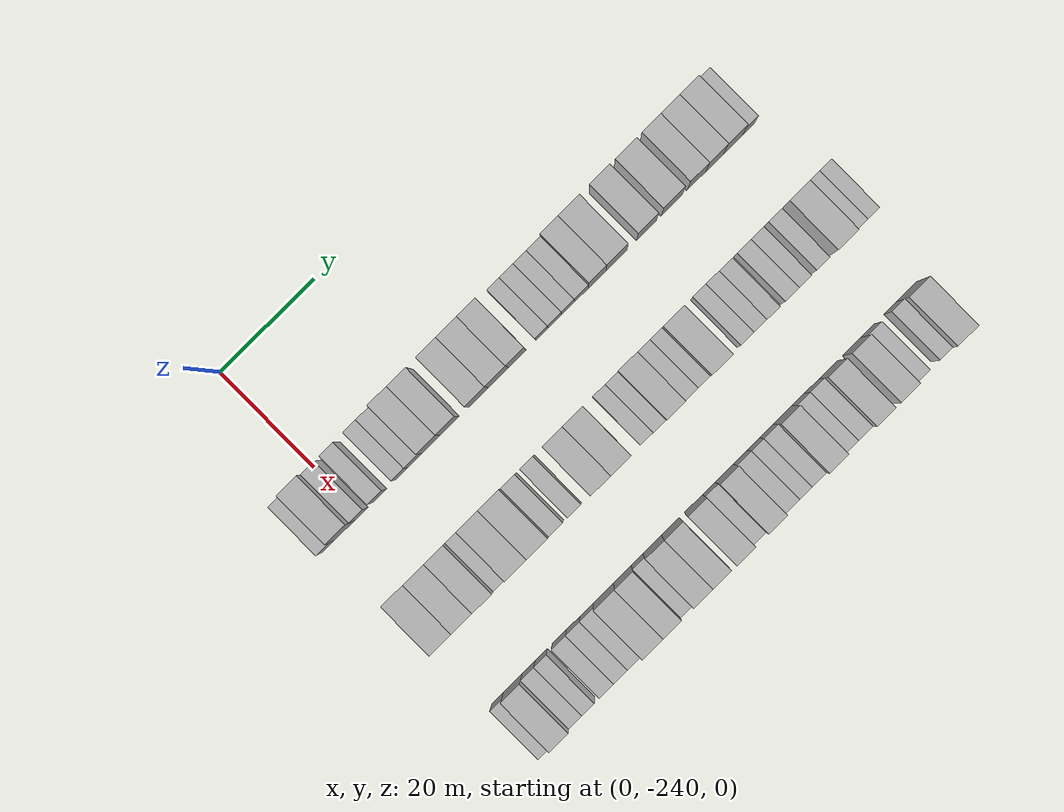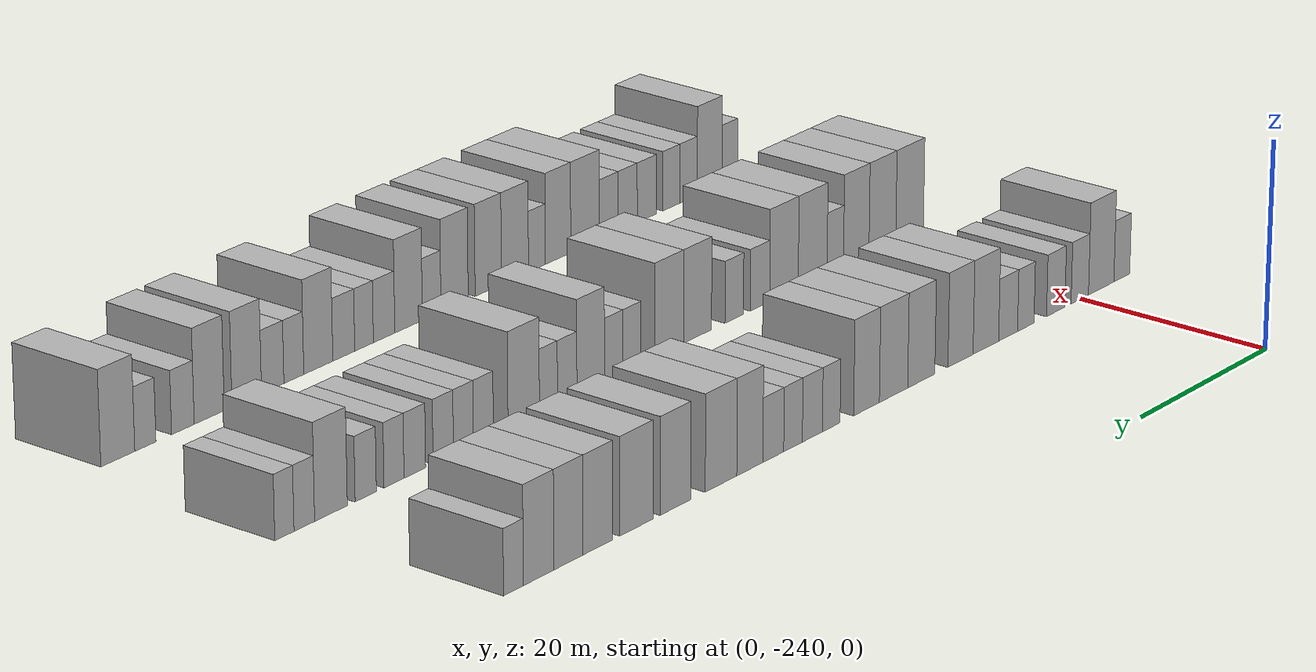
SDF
<sdf version="1.6">
 <world name="default">
  <model name="building_1">
   <static>1</static>
   <pose>25.0000 -246.6970 0 0.000000 0.000000 0.000000</pose>
   <link name="link">
    <pose>0 0 3.00 0 0 0</pose>
    <collision name="collision"><geometry><box><size>10.0000 2.6060 6.0000</size></box></geometry></collision>
    <visual name="visual">
     <cast_shadows>0</cast_shadows>
     <geometry><box><size>10.0000 2.6060 6.0000</size></box></geometry>
     <material>
      <script>
       <uri>model://HANNAS_wall/materials/scripts</uri>
       <uri>model://HANNAS_wall/materials/textures</uri>
       <name>vrc/HANNAS_wall</name>
      </script>
     </material>
    </visual>
   </link>
  </model>
  <model name="building_2">
   <static>1</static>
   <pose>25.0000 -243.3223 0 0.000000 0.000000 0.000000</pose>
   <link name="link">
    <pose>0 0 4.50 0 0 0</pose>
    <collision name="collision"><geometry><box><size>10.0000 4.1435 9.0000</size></box></geometry></collision>
    <visual name="visual">
     <cast_shadows>0</cast_shadows>
     <geometry><box><size>10.0000 4.1435 9.0000</size></box></geometry>
     <material>
      <script>
       <uri>model://HANNAS_wall/materials/scripts</uri>
       <uri>model://HANNAS_wall/materials/textures</uri>
       <name>vrc/HANNAS_wall</name>
      </script>
     </material>
    </visual>
   </link>
  </model>
  <model name="building_3">
   <static>1</static>
   <pose>25.0000 -239.8434 0 0.000000 0.000000 0.000000</pose>
   <link name="link">
    <pose>0 0 3.00 0 0 0</pose>
    <collision name="collision"><geometry><box><size>10.0000 2.8142 6.0000</size></box></geometry></collision>
    <visual name="visual">
     <cast_shadows>0</cast_shadows>
     <geometry><box><size>10.0000 2.8142 6.0000</size></box></geometry>
     <material>
      <script>
       <uri>model://HANNAS_wall/materials/scripts</uri>
       <uri>model://HANNAS_wall/materials/textures</uri>
       <name>vrc/HANNAS_wall</name>
      </script>
     </material>
    </visual>
   </link>
  </model>
  <model name="building_4">
   <static>1</static>
   <pose>25.0000 -235.9697 0 0.000000 0.000000 0.000000</pose>
   <link name="link">
    <pose>0 0 3.00 0 0 0</pose>
    <collision name="collision"><geometry><box><size>10.0000 2.9332 6.0000</size></box></geometry></collision>
    <visual name="visual">
     <cast_shadows>0</cast_shadows>
     <geometry><box><size>10.0000 2.9332 6.0000</size></box></geometry>
     <material>
      <script>
       <uri>model://HANNAS_wall/materials/scripts</uri>
       <uri>model://HANNAS_wall/materials/textures</uri>
       <name>vrc/HANNAS_wall</name>
      </script>
     </material>
    </visual>
   </link>
  </model>
  <model name="building_5">
   <static>1</static>
   <pose>25.0000 -231.2033 0 0.000000 0.000000 0.000000</pose>
   <link name="link">
    <pose>0 0 3.00 0 0 0</pose>
    <collision name="collision"><geometry><box><size>10.0000 2.5995 6.0000</size></box></geometry></collision>
    <visual name="visual">
     <cast_shadows>0</cast_shadows>
     <geometry><box><size>10.0000 2.5995 6.0000</size></box></geometry>
     <material>
      <script>
       <uri>model://HANNAS_wall/materials/scripts</uri>
       <uri>model://HANNAS_wall/materials/textures</uri>
       <name>vrc/HANNAS_wall</name>
      </script>
     </material>
    </visual>
   </link>
  </model>
  <model name="building_6">
   <static>1</static>
   <pose>25.0000 -228.4202 0 0.000000 0.000000 0.000000</pose>
   <link name="link">
    <pose>0 0 3.00 0 0 0</pose>
    <collision name="collision"><geometry><box><size>10.0000 2.9668 6.0000</size></box></geometry></collision>
    <visual name="visual">
     <cast_shadows>0</cast_shadows>
     <geometry><box><size>10.0000 2.9668 6.0000</size></box></geometry>
     <material>
      <script>
       <uri>model://HANNAS_wall/materials/scripts</uri>
       <uri>model://HANNAS_wall/materials/textures</uri>
       <name>vrc/HANNAS_wall</name>
      </script>
     </material>
    </visual>
   </link>
  </model>
  <model name="building_7">
   <static>1</static>
   <pose>25.0000 -224.9501 0 0.000000 0.000000 0.000000</pose>
   <link name="link">
    <pose>0 0 4.50 0 0 0</pose>
    <collision name="collision"><geometry><box><size>10.0000 3.9732 9.0000</size></box></geometry></collision>
    <visual name="visual">
     <cast_shadows>0</cast_shadows>
     <geometry><box><size>10.0000 3.9732 9.0000</size></box></geometry>
     <material>
      <script>
       <uri>model://HANNAS_wall/materials/scripts</uri>
       <uri>model://HANNAS_wall/materials/textures</uri>
       <name>vrc/HANNAS_wall</name>
      </script>
     </material>
    </visual>
   </link>
  </model>
  <model name="building_8">
   <static>1</static>
   <pose>25.0000 -221.0262 0 0.000000 0.000000 0.000000</pose>
   <link name="link">
    <pose>0 0 4.50 0 0 0</pose>
    <collision name="collision"><geometry><box><size>10.0000 3.8746 9.0000</size></box></geometry></collision>
    <visual name="visual">
     <cast_shadows>0</cast_shadows>
     <geometry><box><size>10.0000 3.8746 9.0000</size></box></geometry>
     <material>
      <script>
       <uri>model://HANNAS_wall/materials/scripts</uri>
       <uri>model://HANNAS_wall/materials/textures</uri>
       <name>vrc/HANNAS_wall</name>
      </script>
     </material>
    </visual>
   </link>
  </model>
  <model name="building_9">
   <static>1</static>
   <pose>25.0000 -215.0378 0 0.000000 0.000000 0.000000</pose>
   <link name="link">
    <pose>0 0 4.50 0 0 0</pose>
    <collision name="collision"><geometry><box><size>10.0000 4.1022 9.0000</size></box></geometry></collision>
    <visual name="visual">
     <cast_shadows>0</cast_shadows>
     <geometry><box><size>10.0000 4.1022 9.0000</size></box></geometry>
     <material>
      <script>
       <uri>model://HANNAS_wall/materials/scripts</uri>
       <uri>model://HANNAS_wall/materials/textures</uri>
       <name>vrc/HANNAS_wall</name>
      </script>
     </material>
    </visual>
   </link>
  </model>
  <model name="building_10">
   <static>1</static>
   <pose>25.0000 -210.8659 0 0.000000 0.000000 0.000000</pose>
   <link name="link">
    <pose>0 0 4.50 0 0 0</pose>
    <collision name="collision"><geometry><box><size>10.0000 4.2416 9.0000</size></box></geometry></collision>
    <visual name="visual">
     <cast_shadows>0</cast_shadows>
     <geometry><box><size>10.0000 4.2416 9.0000</size></box></geometry>
     <material>
      <script>
       <uri>model://HANNAS_wall/materials/scripts</uri>
       <uri>model://HANNAS_wall/materials/textures</uri>
       <name>vrc/HANNAS_wall</name>
      </script>
     </material>
    </visual>
   </link>
  </model>
  <model name="building_11">
   <static>1</static>
   <pose>25.0000 -206.8452 0 0.000000 0.000000 0.000000</pose>
   <link name="link">
    <pose>0 0 4.50 0 0 0</pose>
    <collision name="collision"><geometry><box><size>10.0000 3.7999 9.0000</size></box></geometry></collision>
    <visual name="visual">
     <cast_shadows>0</cast_shadows>
     <geometry><box><size>10.0000 3.7999 9.0000</size></box></geometry>
     <material>
      <script>
       <uri>model://HANNAS_wall/materials/scripts</uri>
       <uri>model://HANNAS_wall/materials/textures</uri>
       <name>vrc/HANNAS_wall</name>
      </script>
     </material>
    </visual>
   </link>
  </model>
  <model name="building_12">
   <static>1</static>
   <pose>25.0000 -201.6566 0 0.000000 0.000000 0.000000</pose>
   <link name="link">
    <pose>0 0 3.00 0 0 0</pose>
    <collision name="collision"><geometry><box><size>10.0000 2.5771 6.0000</size></box></geometry></collision>
    <visual name="visual">
     <cast_shadows>0</cast_shadows>
     <geometry><box><size>10.0000 2.5771 6.0000</size></box></geometry>
     <material>
      <script>
       <uri>model://HANNAS_wall/materials/scripts</uri>
       <uri>model://HANNAS_wall/materials/textures</uri>
       <name>vrc/HANNAS_wall</name>
      </script>
     </material>
    </visual>
   </link>
  </model>
  <model name="building_13">
   <static>1</static>
   <pose>25.0000 -198.9184 0 0.000000 0.000000 0.000000</pose>
   <link name="link">
    <pose>0 0 3.00 0 0 0</pose>
    <collision name="collision"><geometry><box><size>10.0000 2.8992 6.0000</size></box></geometry></collision>
    <visual name="visual">
     <cast_shadows>0</cast_shadows>
     <geometry><box><size>10.0000 2.8992 6.0000</size></box></geometry>
     <material>
      <script>
       <uri>model://HANNAS_wall/materials/scripts</uri>
       <uri>model://HANNAS_wall/materials/textures</uri>
       <name>vrc/HANNAS_wall</name>
      </script>
     </material>
    </visual>
   </link>
  </model>
  <model name="building_14">
   <static>1</static>
   <pose>25.0000 -196.1266 0 0.000000 0.000000 0.000000</pose>
   <link name="link">
    <pose>0 0 3.00 0 0 0</pose>
    <collision name="collision"><geometry><box><size>10.0000 2.6846 6.0000</size></box></geometry></collision>
    <visual name="visual">
     <cast_shadows>0</cast_shadows>
     <geometry><box><size>10.0000 2.6846 6.0000</size></box></geometry>
     <material>
      <script>
       <uri>model://HANNAS_wall/materials/scripts</uri>
       <uri>model://HANNAS_wall/materials/textures</uri>
       <name>vrc/HANNAS_wall</name>
      </script>
     </material>
    </visual>
   </link>
  </model>
  <model name="building_15">
   <static>1</static>
   <pose>25.0000 -193.3024 0 0.000000 0.000000 0.000000</pose>
   <link name="link">
    <pose>0 0 3.00 0 0 0</pose>
    <collision name="collision"><geometry><box><size>10.0000 2.9638 6.0000</size></box></geometry></collision>
    <visual name="visual">
     <cast_shadows>0</cast_shadows>
     <geometry><box><size>10.0000 2.9638 6.0000</size></box></geometry>
     <material>
      <script>
       <uri>model://HANNAS_wall/materials/scripts</uri>
       <uri>model://HANNAS_wall/materials/textures</uri>
       <name>vrc/HANNAS_wall</name>
      </script>
     </material>
    </visual>
   </link>
  </model>
  <model name="building_16">
   <static>1</static>
   <pose>25.0000 -189.9717 0 0.000000 0.000000 0.000000</pose>
   <link name="link">
    <pose>0 0 4.50 0 0 0</pose>
    <collision name="collision"><geometry><box><size>10.0000 3.6975 9.0000</size></box></geometry></collision>
    <visual name="visual">
     <cast_shadows>0</cast_shadows>
     <geometry><box><size>10.0000 3.6975 9.0000</size></box></geometry>
     <material>
      <script>
       <uri>model://HANNAS_wall/materials/scripts</uri>
       <uri>model://HANNAS_wall/materials/textures</uri>
       <name>vrc/HANNAS_wall</name>
      </script>
     </material>
    </visual>
   </link>
  </model>
  <model name="building_17">
   <static>1</static>
   <pose>25.0000 -185.9258 0 0.000000 0.000000 0.000000</pose>
   <link name="link">
    <pose>0 0 4.50 0 0 0</pose>
    <collision name="collision"><geometry><box><size>10.0000 4.3942 9.0000</size></box></geometry></collision>
    <visual name="visual">
     <cast_shadows>0</cast_shadows>
     <geometry><box><size>10.0000 4.3942 9.0000</size></box></geometry>
     <material>
      <script>
       <uri>model://HANNAS_wall/materials/scripts</uri>
       <uri>model://HANNAS_wall/materials/textures</uri>
       <name>vrc/HANNAS_wall</name>
      </script>
     </material>
    </visual>
   </link>
  </model>
  <model name="building_18">
   <static>1</static>
   <pose>25.0000 -179.6303 0 0.000000 0.000000 0.000000</pose>
   <link name="link">
    <pose>0 0 4.50 0 0 0</pose>
    <collision name="collision"><geometry><box><size>10.0000 4.1968 9.0000</size></box></geometry></collision>
    <visual name="visual">
     <cast_shadows>0</cast_shadows>
     <geometry><box><size>10.0000 4.1968 9.0000</size></box></geometry>
     <material>
      <script>
       <uri>model://HANNAS_wall/materials/scripts</uri>
       <uri>model://HANNAS_wall/materials/textures</uri>
       <name>vrc/HANNAS_wall</name>
      </script>
     </material>
    </visual>
   </link>
  </model>
  <model name="building_19">
   <static>1</static>
   <pose>25.0000 -174.3043 0 0.000000 0.000000 0.000000</pose>
   <link name="link">
    <pose>0 0 4.50 0 0 0</pose>
    <collision name="collision"><geometry><box><size>10.0000 4.4552 9.0000</size></box></geometry></collision>
    <visual name="visual">
     <cast_shadows>0</cast_shadows>
     <geometry><box><size>10.0000 4.4552 9.0000</size></box></geometry>
     <material>
      <script>
       <uri>model://HANNAS_wall/materials/scripts</uri>
       <uri>model://HANNAS_wall/materials/textures</uri>
       <name>vrc/HANNAS_wall</name>
      </script>
     </material>
    </visual>
   </link>
  </model>
  <model name="building_20">
   <static>1</static>
   <pose>25.0000 -169.1178 0 0.000000 0.000000 0.000000</pose>
   <link name="link">
    <pose>0 0 4.50 0 0 0</pose>
    <collision name="collision"><geometry><box><size>10.0000 3.9179 9.0000</size></box></geometry></collision>
    <visual name="visual">
     <cast_shadows>0</cast_shadows>
     <geometry><box><size>10.0000 3.9179 9.0000</size></box></geometry>
     <material>
      <script>
       <uri>model://HANNAS_wall/materials/scripts</uri>
       <uri>model://HANNAS_wall/materials/textures</uri>
       <name>vrc/HANNAS_wall</name>
      </script>
     </material>
    </visual>
   </link>
  </model>
  <model name="building_21">
   <static>1</static>
   <pose>25.0000 -165.2449 0 0.000000 0.000000 0.000000</pose>
   <link name="link">
    <pose>0 0 4.50 0 0 0</pose>
    <collision name="collision"><geometry><box><size>10.0000 3.8280 9.0000</size></box></geometry></collision>
    <visual name="visual">
     <cast_shadows>0</cast_shadows>
     <geometry><box><size>10.0000 3.8280 9.0000</size></box></geometry>
     <material>
      <script>
       <uri>model://HANNAS_wall/materials/scripts</uri>
       <uri>model://HANNAS_wall/materials/textures</uri>
       <name>vrc/HANNAS_wall</name>
      </script>
     </material>
    </visual>
   </link>
  </model>
  <model name="building_22">
   <static>1</static>
   <pose>25.0000 -161.3440 0 0.000000 0.000000 0.000000</pose>
   <link name="link">
    <pose>0 0 4.50 0 0 0</pose>
    <collision name="collision"><geometry><box><size>10.0000 3.9738 9.0000</size></box></geometry></collision>
    <visual name="visual">
     <cast_shadows>0</cast_shadows>
     <geometry><box><size>10.0000 3.9738 9.0000</size></box></geometry>
     <material>
      <script>
       <uri>model://HANNAS_wall/materials/scripts</uri>
       <uri>model://HANNAS_wall/materials/textures</uri>
       <name>vrc/HANNAS_wall</name>
      </script>
     </material>
    </visual>
   </link>
  </model>
  <model name="building_23">
   <static>1</static>
   <pose>25.0000 -158.0768 0 0.000000 0.000000 0.000000</pose>
   <link name="link">
    <pose>0 0 3.00 0 0 0</pose>
    <collision name="collision"><geometry><box><size>10.0000 2.5608 6.0000</size></box></geometry></collision>
    <visual name="visual">
     <cast_shadows>0</cast_shadows>
     <geometry><box><size>10.0000 2.5608 6.0000</size></box></geometry>
     <material>
      <script>
       <uri>model://HANNAS_wall/materials/scripts</uri>
       <uri>model://HANNAS_wall/materials/textures</uri>
       <name>vrc/HANNAS_wall</name>
      </script>
     </material>
    </visual>
   </link>
  </model>
  <model name="building_124">
   <static>1</static>
   <pose>47.0000 -243.7824 0 0.000000 0.000000 0.000000</pose>
   <link name="link">
    <pose>0 0 4.50 0 0 0</pose>
    <collision name="collision"><geometry><box><size>10.0000 4.4352 9.0000</size></box></geometry></collision>
    <visual name="visual">
     <cast_shadows>0</cast_shadows>
     <geometry><box><size>10.0000 4.4352 9.0000</size></box></geometry>
     <material>
      <script>
       <uri>model://HANNAS_wall/materials/scripts</uri>
       <uri>model://HANNAS_wall/materials/textures</uri>
       <name>vrc/HANNAS_wall</name>
      </script>
     </material>
    </visual>
   </link>
  </model>
  <model name="building_125">
   <static>1</static>
   <pose>47.0000 -239.4387 0 0.000000 0.000000 0.000000</pose>
   <link name="link">
    <pose>0 0 4.50 0 0 0</pose>
    <collision name="collision"><geometry><box><size>10.0000 4.2520 9.0000</size></box></geometry></collision>
    <visual name="visual">
     <cast_shadows>0</cast_shadows>
     <geometry><box><size>10.0000 4.2520 9.0000</size></box></geometry>
     <material>
      <script>
       <uri>model://HANNAS_wall/materials/scripts</uri>
       <uri>model://HANNAS_wall/materials/textures</uri>
       <name>vrc/HANNAS_wall</name>
      </script>
     </material>
    </visual>
   </link>
  </model>
  <model name="building_126">
   <static>1</static>
   <pose>47.0000 -235.3154 0 0.000000 0.000000 0.000000</pose>
   <link name="link">
    <pose>0 0 4.50 0 0 0</pose>
    <collision name="collision"><geometry><box><size>10.0000 3.9947 9.0000</size></box></geometry></collision>
    <visual name="visual">
     <cast_shadows>0</cast_shadows>
     <geometry><box><size>10.0000 3.9947 9.0000</size></box></geometry>
     <material>
      <script>
       <uri>model://HANNAS_wall/materials/scripts</uri>
       <uri>model://HANNAS_wall/materials/textures</uri>
       <name>vrc/HANNAS_wall</name>
      </script>
     </material>
    </visual>
   </link>
  </model>
  <model name="building_127">
   <static>1</static>
   <pose>47.0000 -232.0359 0 0.000000 0.000000 0.000000</pose>
   <link name="link">
    <pose>0 0 3.00 0 0 0</pose>
    <collision name="collision"><geometry><box><size>10.0000 2.5642 6.0000</size></box></geometry></collision>
    <visual name="visual">
     <cast_shadows>0</cast_shadows>
     <geometry><box><size>10.0000 2.5642 6.0000</size></box></geometry>
     <material>
      <script>
       <uri>model://HANNAS_wall/materials/scripts</uri>
       <uri>model://HANNAS_wall/materials/textures</uri>
       <name>vrc/HANNAS_wall</name>
      </script>
     </material>
    </visual>
   </link>
  </model>
  <model name="building_128">
   <static>1</static>
   <pose>47.0000 -228.5365 0 0.000000 0.000000 0.000000</pose>
   <link name="link">
    <pose>0 0 4.50 0 0 0</pose>
    <collision name="collision"><geometry><box><size>10.0000 4.4346 9.0000</size></box></geometry></collision>
    <visual name="visual">
     <cast_shadows>0</cast_shadows>
     <geometry><box><size>10.0000 4.4346 9.0000</size></box></geometry>
     <material>
      <script>
       <uri>model://HANNAS_wall/materials/scripts</uri>
       <uri>model://HANNAS_wall/materials/textures</uri>
       <name>vrc/HANNAS_wall</name>
      </script>
     </material>
    </visual>
   </link>
  </model>
  <model name="building_129">
   <static>1</static>
   <pose>47.0000 -224.1446 0 0.000000 0.000000 0.000000</pose>
   <link name="link">
    <pose>0 0 4.50 0 0 0</pose>
    <collision name="collision"><geometry><box><size>10.0000 4.3493 9.0000</size></box></geometry></collision>
    <visual name="visual">
     <cast_shadows>0</cast_shadows>
     <geometry><box><size>10.0000 4.3493 9.0000</size></box></geometry>
     <material>
      <script>
       <uri>model://HANNAS_wall/materials/scripts</uri>
       <uri>model://HANNAS_wall/materials/textures</uri>
       <name>vrc/HANNAS_wall</name>
      </script>
     </material>
    </visual>
   </link>
  </model>
  <model name="building_130">
   <static>1</static>
   <pose>47.0000 -220.4897 0 0.000000 0.000000 0.000000</pose>
   <link name="link">
    <pose>0 0 3.00 0 0 0</pose>
    <collision name="collision"><geometry><box><size>10.0000 2.9606 6.0000</size></box></geometry></collision>
    <visual name="visual">
     <cast_shadows>0</cast_shadows>
     <geometry><box><size>10.0000 2.9606 6.0000</size></box></geometry>
     <material>
      <script>
       <uri>model://HANNAS_wall/materials/scripts</uri>
       <uri>model://HANNAS_wall/materials/textures</uri>
       <name>vrc/HANNAS_wall</name>
      </script>
     </material>
    </visual>
   </link>
  </model>
  <model name="building_131">
   <static>1</static>
   <pose>47.0000 -216.6274 0 0.000000 0.000000 0.000000</pose>
   <link name="link">
    <pose>0 0 3.00 0 0 0</pose>
    <collision name="collision"><geometry><box><size>10.0000 2.7639 6.0000</size></box></geometry></collision>
    <visual name="visual">
     <cast_shadows>0</cast_shadows>
     <geometry><box><size>10.0000 2.7639 6.0000</size></box></geometry>
     <material>
      <script>
       <uri>model://HANNAS_wall/materials/scripts</uri>
       <uri>model://HANNAS_wall/materials/textures</uri>
       <name>vrc/HANNAS_wall</name>
      </script>
     </material>
    </visual>
   </link>
  </model>
  <model name="building_132">
   <static>1</static>
   <pose>47.0000 -211.1855 0 0.000000 0.000000 0.000000</pose>
   <link name="link">
    <pose>0 0 4.50 0 0 0</pose>
    <collision name="collision"><geometry><box><size>10.0000 4.1198 9.0000</size></box></geometry></collision>
    <visual name="visual">
     <cast_shadows>0</cast_shadows>
     <geometry><box><size>10.0000 4.1198 9.0000</size></box></geometry>
     <material>
      <script>
       <uri>model://HANNAS_wall/materials/scripts</uri>
       <uri>model://HANNAS_wall/materials/textures</uri>
       <name>vrc/HANNAS_wall</name>
      </script>
     </material>
    </visual>
   </link>
  </model>
  <model name="building_133">
   <static>1</static>
   <pose>47.0000 -207.0410 0 0.000000 0.000000 0.000000</pose>
   <link name="link">
    <pose>0 0 4.50 0 0 0</pose>
    <collision name="collision"><geometry><box><size>10.0000 4.1692 9.0000</size></box></geometry></collision>
    <visual name="visual">
     <cast_shadows>0</cast_shadows>
     <geometry><box><size>10.0000 4.1692 9.0000</size></box></geometry>
     <material>
      <script>
       <uri>model://HANNAS_wall/materials/scripts</uri>
       <uri>model://HANNAS_wall/materials/textures</uri>
       <name>vrc/HANNAS_wall</name>
      </script>
     </material>
    </visual>
   </link>
  </model>
  <model name="building_134">
   <static>1</static>
   <pose>47.0000 -201.6583 0 0.000000 0.000000 0.000000</pose>
   <link name="link">
    <pose>0 0 3.00 0 0 0</pose>
    <collision name="collision"><geometry><box><size>10.0000 2.5963 6.0000</size></box></geometry></collision>
    <visual name="visual">
     <cast_shadows>0</cast_shadows>
     <geometry><box><size>10.0000 2.5963 6.0000</size></box></geometry>
     <material>
      <script>
       <uri>model://HANNAS_wall/materials/scripts</uri>
       <uri>model://HANNAS_wall/materials/textures</uri>
       <name>vrc/HANNAS_wall</name>
      </script>
     </material>
    </visual>
   </link>
  </model>
  <model name="building_135">
   <static>1</static>
   <pose>47.0000 -199.0377 0 0.000000 0.000000 0.000000</pose>
   <link name="link">
    <pose>0 0 3.00 0 0 0</pose>
    <collision name="collision"><geometry><box><size>10.0000 2.6450 6.0000</size></box></geometry></collision>
    <visual name="visual">
     <cast_shadows>0</cast_shadows>
     <geometry><box><size>10.0000 2.6450 6.0000</size></box></geometry>
     <material>
      <script>
       <uri>model://HANNAS_wall/materials/scripts</uri>
       <uri>model://HANNAS_wall/materials/textures</uri>
       <name>vrc/HANNAS_wall</name>
      </script>
     </material>
    </visual>
   </link>
  </model>
  <model name="building_136">
   <static>1</static>
   <pose>47.0000 -195.7688 0 0.000000 0.000000 0.000000</pose>
   <link name="link">
    <pose>0 0 4.50 0 0 0</pose>
    <collision name="collision"><geometry><box><size>10.0000 3.8927 9.0000</size></box></geometry></collision>
    <visual name="visual">
     <cast_shadows>0</cast_shadows>
     <geometry><box><size>10.0000 3.8927 9.0000</size></box></geometry>
     <material>
      <script>
       <uri>model://HANNAS_wall/materials/scripts</uri>
       <uri>model://HANNAS_wall/materials/textures</uri>
       <name>vrc/HANNAS_wall</name>
      </script>
     </material>
    </visual>
   </link>
  </model>
  <model name="building_137">
   <static>1</static>
   <pose>47.0000 -192.4594 0 0.000000 0.000000 0.000000</pose>
   <link name="link">
    <pose>0 0 3.00 0 0 0</pose>
    <collision name="collision"><geometry><box><size>10.0000 2.7261 6.0000</size></box></geometry></collision>
    <visual name="visual">
     <cast_shadows>0</cast_shadows>
     <geometry><box><size>10.0000 2.7261 6.0000</size></box></geometry>
     <material>
      <script>
       <uri>model://HANNAS_wall/materials/scripts</uri>
       <uri>model://HANNAS_wall/materials/textures</uri>
       <name>vrc/HANNAS_wall</name>
      </script>
     </material>
    </visual>
   </link>
  </model>
  <model name="building_138">
   <static>1</static>
   <pose>47.0000 -189.8411 0 0.000000 0.000000 0.000000</pose>
   <link name="link">
    <pose>0 0 3.00 0 0 0</pose>
    <collision name="collision"><geometry><box><size>10.0000 2.5106 6.0000</size></box></geometry></collision>
    <visual name="visual">
     <cast_shadows>0</cast_shadows>
     <geometry><box><size>10.0000 2.5106 6.0000</size></box></geometry>
     <material>
      <script>
       <uri>model://HANNAS_wall/materials/scripts</uri>
       <uri>model://HANNAS_wall/materials/textures</uri>
       <name>vrc/HANNAS_wall</name>
      </script>
     </material>
    </visual>
   </link>
  </model>
  <model name="building_139">
   <static>1</static>
   <pose>47.0000 -186.4212 0 0.000000 0.000000 0.000000</pose>
   <link name="link">
    <pose>0 0 4.50 0 0 0</pose>
    <collision name="collision"><geometry><box><size>10.0000 4.3291 9.0000</size></box></geometry></collision>
    <visual name="visual">
     <cast_shadows>0</cast_shadows>
     <geometry><box><size>10.0000 4.3291 9.0000</size></box></geometry>
     <material>
      <script>
       <uri>model://HANNAS_wall/materials/scripts</uri>
       <uri>model://HANNAS_wall/materials/textures</uri>
       <name>vrc/HANNAS_wall</name>
      </script>
     </material>
    </visual>
   </link>
  </model>
  <model name="building_140">
   <static>1</static>
   <pose>47.0000 -180.9013 0 0.000000 0.000000 0.000000</pose>
   <link name="link">
    <pose>0 0 3.00 0 0 0</pose>
    <collision name="collision"><geometry><box><size>10.0000 2.7108 6.0000</size></box></geometry></collision>
    <visual name="visual">
     <cast_shadows>0</cast_shadows>
     <geometry><box><size>10.0000 2.7108 6.0000</size></box></geometry>
     <material>
      <script>
       <uri>model://HANNAS_wall/materials/scripts</uri>
       <uri>model://HANNAS_wall/materials/textures</uri>
       <name>vrc/HANNAS_wall</name>
      </script>
     </material>
    </visual>
   </link>
  </model>
  <model name="building_141">
   <static>1</static>
   <pose>47.0000 -178.2037 0 0.000000 0.000000 0.000000</pose>
   <link name="link">
    <pose>0 0 3.00 0 0 0</pose>
    <collision name="collision"><geometry><box><size>10.0000 2.6844 6.0000</size></box></geometry></collision>
    <visual name="visual">
     <cast_shadows>0</cast_shadows>
     <geometry><box><size>10.0000 2.6844 6.0000</size></box></geometry>
     <material>
      <script>
       <uri>model://HANNAS_wall/materials/scripts</uri>
       <uri>model://HANNAS_wall/materials/textures</uri>
       <name>vrc/HANNAS_wall</name>
      </script>
     </material>
    </visual>
   </link>
  </model>
  <model name="building_142">
   <static>1</static>
   <pose>47.0000 -175.4995 0 0.000000 0.000000 0.000000</pose>
   <link name="link">
    <pose>0 0 3.00 0 0 0</pose>
    <collision name="collision"><geometry><box><size>10.0000 2.7240 6.0000</size></box></geometry></collision>
    <visual name="visual">
     <cast_shadows>0</cast_shadows>
     <geometry><box><size>10.0000 2.7240 6.0000</size></box></geometry>
     <material>
      <script>
       <uri>model://HANNAS_wall/materials/scripts</uri>
       <uri>model://HANNAS_wall/materials/textures</uri>
       <name>vrc/HANNAS_wall</name>
      </script>
     </material>
    </visual>
   </link>
  </model>
  <model name="building_143">
   <static>1</static>
   <pose>47.0000 -171.7091 0 0.000000 0.000000 0.000000</pose>
   <link name="link">
    <pose>0 0 3.00 0 0 0</pose>
    <collision name="collision"><geometry><box><size>10.0000 2.8568 6.0000</size></box></geometry></collision>
    <visual name="visual">
     <cast_shadows>0</cast_shadows>
     <geometry><box><size>10.0000 2.8568 6.0000</size></box></geometry>
     <material>
      <script>
       <uri>model://HANNAS_wall/materials/scripts</uri>
       <uri>model://HANNAS_wall/materials/textures</uri>
       <name>vrc/HANNAS_wall</name>
      </script>
     </material>
    </visual>
   </link>
  </model>
  <model name="building_144">
   <static>1</static>
   <pose>47.0000 -168.9692 0 0.000000 0.000000 0.000000</pose>
   <link name="link">
    <pose>0 0 3.00 0 0 0</pose>
    <collision name="collision"><geometry><box><size>10.0000 2.6231 6.0000</size></box></geometry></collision>
    <visual name="visual">
     <cast_shadows>0</cast_shadows>
     <geometry><box><size>10.0000 2.6231 6.0000</size></box></geometry>
     <material>
      <script>
       <uri>model://HANNAS_wall/materials/scripts</uri>
       <uri>model://HANNAS_wall/materials/textures</uri>
       <name>vrc/HANNAS_wall</name>
      </script>
     </material>
    </visual>
   </link>
  </model>
  <model name="building_145">
   <static>1</static>
   <pose>47.0000 -165.2765 0 0.000000 0.000000 0.000000</pose>
   <link name="link">
    <pose>0 0 3.00 0 0 0</pose>
    <collision name="collision"><geometry><box><size>10.0000 2.7622 6.0000</size></box></geometry></collision>
    <visual name="visual">
     <cast_shadows>0</cast_shadows>
     <geometry><box><size>10.0000 2.7622 6.0000</size></box></geometry>
     <material>
      <script>
       <uri>model://HANNAS_wall/materials/scripts</uri>
       <uri>model://HANNAS_wall/materials/textures</uri>
       <name>vrc/HANNAS_wall</name>
      </script>
     </material>
    </visual>
   </link>
  </model>
  <model name="building_146">
   <static>1</static>
   <pose>47.0000 -160.7940 0 0.000000 0.000000 0.000000</pose>
   <link name="link">
    <pose>0 0 4.50 0 0 0</pose>
    <collision name="collision"><geometry><box><size>10.0000 4.2029 9.0000</size></box></geometry></collision>
    <visual name="visual">
     <cast_shadows>0</cast_shadows>
     <geometry><box><size>10.0000 4.2029 9.0000</size></box></geometry>
     <material>
      <script>
       <uri>model://HANNAS_wall/materials/scripts</uri>
       <uri>model://HANNAS_wall/materials/textures</uri>
       <name>vrc/HANNAS_wall</name>
      </script>
     </material>
    </visual>
   </link>
  </model>
  <model name="building_147">
   <static>1</static>
   <pose>47.0000 -157.3845 0 0.000000 0.000000 0.000000</pose>
   <link name="link">
    <pose>0 0 3.00 0 0 0</pose>
    <collision name="collision"><geometry><box><size>10.0000 2.6161 6.0000</size></box></geometry></collision>
    <visual name="visual">
     <cast_shadows>0</cast_shadows>
     <geometry><box><size>10.0000 2.6161 6.0000</size></box></geometry>
     <material>
      <script>
       <uri>model://HANNAS_wall/materials/scripts</uri>
       <uri>model://HANNAS_wall/materials/textures</uri>
       <name>vrc/HANNAS_wall</name>
      </script>
     </material>
    </visual>
   </link>
  </model>
  <model name="building_148">
   <static>1</static>
   <pose>47.0000 -154.8651 0 0.000000 0.000000 0.000000</pose>
   <link name="link">
    <pose>0 0 3.00 0 0 0</pose>
    <collision name="collision"><geometry><box><size>10.0000 2.4227 6.0000</size></box></geometry></collision>
    <visual name="visual">
     <cast_shadows>0</cast_shadows>
     <geometry><box><size>10.0000 2.4227 6.0000</size></box></geometry>
     <material>
      <script>
       <uri>model://HANNAS_wall/materials/scripts</uri>
       <uri>model://HANNAS_wall/materials/textures</uri>
       <name>vrc/HANNAS_wall</name>
      </script>
     </material>
    </visual>
   </link>
  </model>
  <model name="building_250">
   <static>1</static>
   <pose>69.0000 -244.7820 0 0.000000 0.000000 0.000000</pose>
   <link name="link">
    <pose>0 0 3.00 0 0 0</pose>
    <collision name="collision"><geometry><box><size>10.0000 2.4359 6.0000</size></box></geometry></collision>
    <visual name="visual">
     <cast_shadows>0</cast_shadows>
     <geometry><box><size>10.0000 2.4359 6.0000</size></box></geometry>
     <material>
      <script>
       <uri>model://HANNAS_wall/materials/scripts</uri>
       <uri>model://HANNAS_wall/materials/textures</uri>
       <name>vrc/HANNAS_wall</name>
      </script>
     </material>
    </visual>
   </link>
  </model>
  <model name="building_251">
   <static>1</static>
   <pose>69.0000 -241.6162 0 0.000000 0.000000 0.000000</pose>
   <link name="link">
    <pose>0 0 4.50 0 0 0</pose>
    <collision name="collision"><geometry><box><size>10.0000 3.8958 9.0000</size></box></geometry></collision>
    <visual name="visual">
     <cast_shadows>0</cast_shadows>
     <geometry><box><size>10.0000 3.8958 9.0000</size></box></geometry>
     <material>
      <script>
       <uri>model://HANNAS_wall/materials/scripts</uri>
       <uri>model://HANNAS_wall/materials/textures</uri>
       <name>vrc/HANNAS_wall</name>
      </script>
     </material>
    </visual>
   </link>
  </model>
  <model name="building_252">
   <static>1</static>
   <pose>69.0000 -238.3139 0 0.000000 0.000000 0.000000</pose>
   <link name="link">
    <pose>0 0 3.00 0 0 0</pose>
    <collision name="collision"><geometry><box><size>10.0000 2.7087 6.0000</size></box></geometry></collision>
    <visual name="visual">
     <cast_shadows>0</cast_shadows>
     <geometry><box><size>10.0000 2.7087 6.0000</size></box></geometry>
     <material>
      <script>
       <uri>model://HANNAS_wall/materials/scripts</uri>
       <uri>model://HANNAS_wall/materials/textures</uri>
       <name>vrc/HANNAS_wall</name>
      </script>
     </material>
    </visual>
   </link>
  </model>
  <model name="building_253">
   <static>1</static>
   <pose>69.0000 -235.6478 0 0.000000 0.000000 0.000000</pose>
   <link name="link">
    <pose>0 0 3.00 0 0 0</pose>
    <collision name="collision"><geometry><box><size>10.0000 2.6234 6.0000</size></box></geometry></collision>
    <visual name="visual">
     <cast_shadows>0</cast_shadows>
     <geometry><box><size>10.0000 2.6234 6.0000</size></box></geometry>
     <material>
      <script>
       <uri>model://HANNAS_wall/materials/scripts</uri>
       <uri>model://HANNAS_wall/materials/textures</uri>
       <name>vrc/HANNAS_wall</name>
      </script>
     </material>
    </visual>
   </link>
  </model>
  <model name="building_254">
   <static>1</static>
   <pose>69.0000 -231.8597 0 0.000000 0.000000 0.000000</pose>
   <link name="link">
    <pose>0 0 3.00 0 0 0</pose>
    <collision name="collision"><geometry><box><size>10.0000 2.9528 6.0000</size></box></geometry></collision>
    <visual name="visual">
     <cast_shadows>0</cast_shadows>
     <geometry><box><size>10.0000 2.9528 6.0000</size></box></geometry>
     <material>
      <script>
       <uri>model://HANNAS_wall/materials/scripts</uri>
       <uri>model://HANNAS_wall/materials/textures</uri>
       <name>vrc/HANNAS_wall</name>
      </script>
     </material>
    </visual>
   </link>
  </model>
  <model name="building_255">
   <static>1</static>
   <pose>69.0000 -228.9451 0 0.000000 0.000000 0.000000</pose>
   <link name="link">
    <pose>0 0 3.00 0 0 0</pose>
    <collision name="collision"><geometry><box><size>10.0000 2.8764 6.0000</size></box></geometry></collision>
    <visual name="visual">
     <cast_shadows>0</cast_shadows>
     <geometry><box><size>10.0000 2.8764 6.0000</size></box></geometry>
     <material>
      <script>
       <uri>model://HANNAS_wall/materials/scripts</uri>
       <uri>model://HANNAS_wall/materials/textures</uri>
       <name>vrc/HANNAS_wall</name>
      </script>
     </material>
    </visual>
   </link>
  </model>
  <model name="building_256">
   <static>1</static>
   <pose>69.0000 -226.0829 0 0.000000 0.000000 0.000000</pose>
   <link name="link">
    <pose>0 0 3.00 0 0 0</pose>
    <collision name="collision"><geometry><box><size>10.0000 2.8479 6.0000</size></box></geometry></collision>
    <visual name="visual">
     <cast_shadows>0</cast_shadows>
     <geometry><box><size>10.0000 2.8479 6.0000</size></box></geometry>
     <material>
      <script>
       <uri>model://HANNAS_wall/materials/scripts</uri>
       <uri>model://HANNAS_wall/materials/textures</uri>
       <name>vrc/HANNAS_wall</name>
      </script>
     </material>
    </visual>
   </link>
  </model>
  <model name="building_257">
   <static>1</static>
   <pose>69.0000 -222.5139 0 0.000000 0.000000 0.000000</pose>
   <link name="link">
    <pose>0 0 4.50 0 0 0</pose>
    <collision name="collision"><geometry><box><size>10.0000 4.2902 9.0000</size></box></geometry></collision>
    <visual name="visual">
     <cast_shadows>0</cast_shadows>
     <geometry><box><size>10.0000 4.2902 9.0000</size></box></geometry>
     <material>
      <script>
       <uri>model://HANNAS_wall/materials/scripts</uri>
       <uri>model://HANNAS_wall/materials/textures</uri>
       <name>vrc/HANNAS_wall</name>
      </script>
     </material>
    </visual>
   </link>
  </model>
  <model name="building_258">
   <static>1</static>
   <pose>69.0000 -218.4936 0 0.000000 0.000000 0.000000</pose>
   <link name="link">
    <pose>0 0 4.50 0 0 0</pose>
    <collision name="collision"><geometry><box><size>10.0000 3.7505 9.0000</size></box></geometry></collision>
    <visual name="visual">
     <cast_shadows>0</cast_shadows>
     <geometry><box><size>10.0000 3.7505 9.0000</size></box></geometry>
     <material>
      <script>
       <uri>model://HANNAS_wall/materials/scripts</uri>
       <uri>model://HANNAS_wall/materials/textures</uri>
       <name>vrc/HANNAS_wall</name>
      </script>
     </material>
    </visual>
   </link>
  </model>
  <model name="building_259">
   <static>1</static>
   <pose>69.0000 -215.3722 0 0.000000 0.000000 0.000000</pose>
   <link name="link">
    <pose>0 0 3.00 0 0 0</pose>
    <collision name="collision"><geometry><box><size>10.0000 2.4921 6.0000</size></box></geometry></collision>
    <visual name="visual">
     <cast_shadows>0</cast_shadows>
     <geometry><box><size>10.0000 2.4921 6.0000</size></box></geometry>
     <material>
      <script>
       <uri>model://HANNAS_wall/materials/scripts</uri>
       <uri>model://HANNAS_wall/materials/textures</uri>
       <name>vrc/HANNAS_wall</name>
      </script>
     </material>
    </visual>
   </link>
  </model>
  <model name="building_260">
   <static>1</static>
   <pose>69.0000 -212.1610 0 0.000000 0.000000 0.000000</pose>
   <link name="link">
    <pose>0 0 4.50 0 0 0</pose>
    <collision name="collision"><geometry><box><size>10.0000 3.9302 9.0000</size></box></geometry></collision>
    <visual name="visual">
     <cast_shadows>0</cast_shadows>
     <geometry><box><size>10.0000 3.9302 9.0000</size></box></geometry>
     <material>
      <script>
       <uri>model://HANNAS_wall/materials/scripts</uri>
       <uri>model://HANNAS_wall/materials/textures</uri>
       <name>vrc/HANNAS_wall</name>
      </script>
     </material>
    </visual>
   </link>
  </model>
  <model name="building_261">
   <static>1</static>
   <pose>69.0000 -208.2949 0 0.000000 0.000000 0.000000</pose>
   <link name="link">
    <pose>0 0 4.50 0 0 0</pose>
    <collision name="collision"><geometry><box><size>10.0000 3.8020 9.0000</size></box></geometry></collision>
    <visual name="visual">
     <cast_shadows>0</cast_shadows>
     <geometry><box><size>10.0000 3.8020 9.0000</size></box></geometry>
     <material>
      <script>
       <uri>model://HANNAS_wall/materials/scripts</uri>
       <uri>model://HANNAS_wall/materials/textures</uri>
       <name>vrc/HANNAS_wall</name>
      </script>
     </material>
    </visual>
   </link>
  </model>
  <model name="building_262">
   <static>1</static>
   <pose>69.0000 -203.4534 0 0.000000 0.000000 0.000000</pose>
   <link name="link">
    <pose>0 0 4.50 0 0 0</pose>
    <collision name="collision"><geometry><box><size>10.0000 3.8810 9.0000</size></box></geometry></collision>
    <visual name="visual">
     <cast_shadows>0</cast_shadows>
     <geometry><box><size>10.0000 3.8810 9.0000</size></box></geometry>
     <material>
      <script>
       <uri>model://HANNAS_wall/materials/scripts</uri>
       <uri>model://HANNAS_wall/materials/textures</uri>
       <name>vrc/HANNAS_wall</name>
      </script>
     </material>
    </visual>
   </link>
  </model>
  <model name="building_263">
   <static>1</static>
   <pose>69.0000 -200.2009 0 0.000000 0.000000 0.000000</pose>
   <link name="link">
    <pose>0 0 3.00 0 0 0</pose>
    <collision name="collision"><geometry><box><size>10.0000 2.6239 6.0000</size></box></geometry></collision>
    <visual name="visual">
     <cast_shadows>0</cast_shadows>
     <geometry><box><size>10.0000 2.6239 6.0000</size></box></geometry>
     <material>
      <script>
       <uri>model://HANNAS_wall/materials/scripts</uri>
       <uri>model://HANNAS_wall/materials/textures</uri>
       <name>vrc/HANNAS_wall</name>
      </script>
     </material>
    </visual>
   </link>
  </model>
  <model name="building_264">
   <static>1</static>
   <pose>69.0000 -196.9594 0 0.000000 0.000000 0.000000</pose>
   <link name="link">
    <pose>0 0 4.50 0 0 0</pose>
    <collision name="collision"><geometry><box><size>10.0000 3.8591 9.0000</size></box></geometry></collision>
    <visual name="visual">
     <cast_shadows>0</cast_shadows>
     <geometry><box><size>10.0000 3.8591 9.0000</size></box></geometry>
     <material>
      <script>
       <uri>model://HANNAS_wall/materials/scripts</uri>
       <uri>model://HANNAS_wall/materials/textures</uri>
       <name>vrc/HANNAS_wall</name>
      </script>
     </material>
    </visual>
   </link>
  </model>
  <model name="building_265">
   <static>1</static>
   <pose>69.0000 -193.5419 0 0.000000 0.000000 0.000000</pose>
   <link name="link">
    <pose>0 0 3.00 0 0 0</pose>
    <collision name="collision"><geometry><box><size>10.0000 2.9759 6.0000</size></box></geometry></collision>
    <visual name="visual">
     <cast_shadows>0</cast_shadows>
     <geometry><box><size>10.0000 2.9759 6.0000</size></box></geometry>
     <material>
      <script>
       <uri>model://HANNAS_wall/materials/scripts</uri>
       <uri>model://HANNAS_wall/materials/textures</uri>
       <name>vrc/HANNAS_wall</name>
      </script>
     </material>
    </visual>
   </link>
  </model>
  <model name="building_266">
   <static>1</static>
   <pose>69.0000 -190.7716 0 0.000000 0.000000 0.000000</pose>
   <link name="link">
    <pose>0 0 3.00 0 0 0</pose>
    <collision name="collision"><geometry><box><size>10.0000 2.5647 6.0000</size></box></geometry></collision>
    <visual name="visual">
     <cast_shadows>0</cast_shadows>
     <geometry><box><size>10.0000 2.5647 6.0000</size></box></geometry>
     <material>
      <script>
       <uri>model://HANNAS_wall/materials/scripts</uri>
       <uri>model://HANNAS_wall/materials/textures</uri>
       <name>vrc/HANNAS_wall</name>
      </script>
     </material>
    </visual>
   </link>
  </model>
  <model name="building_267">
   <static>1</static>
   <pose>69.0000 -187.9906 0 0.000000 0.000000 0.000000</pose>
   <link name="link">
    <pose>0 0 3.00 0 0 0</pose>
    <collision name="collision"><geometry><box><size>10.0000 2.9972 6.0000</size></box></geometry></collision>
    <visual name="visual">
     <cast_shadows>0</cast_shadows>
     <geometry><box><size>10.0000 2.9972 6.0000</size></box></geometry>
     <material>
      <script>
       <uri>model://HANNAS_wall/materials/scripts</uri>
       <uri>model://HANNAS_wall/materials/textures</uri>
       <name>vrc/HANNAS_wall</name>
      </script>
     </material>
    </visual>
   </link>
  </model>
  <model name="building_268">
   <static>1</static>
   <pose>69.0000 -184.5268 0 0.000000 0.000000 0.000000</pose>
   <link name="link">
    <pose>0 0 4.50 0 0 0</pose>
    <collision name="collision"><geometry><box><size>10.0000 3.9304 9.0000</size></box></geometry></collision>
    <visual name="visual">
     <cast_shadows>0</cast_shadows>
     <geometry><box><size>10.0000 3.9304 9.0000</size></box></geometry>
     <material>
      <script>
       <uri>model://HANNAS_wall/materials/scripts</uri>
       <uri>model://HANNAS_wall/materials/textures</uri>
       <name>vrc/HANNAS_wall</name>
      </script>
     </material>
    </visual>
   </link>
  </model>
  <model name="building_269">
   <static>1</static>
   <pose>69.0000 -181.2266 0 0.000000 0.000000 0.000000</pose>
   <link name="link">
    <pose>0 0 3.00 0 0 0</pose>
    <collision name="collision"><geometry><box><size>10.0000 2.6701 6.0000</size></box></geometry></collision>
    <visual name="visual">
     <cast_shadows>0</cast_shadows>
     <geometry><box><size>10.0000 2.6701 6.0000</size></box></geometry>
     <material>
      <script>
       <uri>model://HANNAS_wall/materials/scripts</uri>
       <uri>model://HANNAS_wall/materials/textures</uri>
       <name>vrc/HANNAS_wall</name>
      </script>
     </material>
    </visual>
   </link>
  </model>
  <model name="building_270">
   <static>1</static>
   <pose>69.0000 -178.4005 0 0.000000 0.000000 0.000000</pose>
   <link name="link">
    <pose>0 0 3.00 0 0 0</pose>
    <collision name="collision"><geometry><box><size>10.0000 2.9821 6.0000</size></box></geometry></collision>
    <visual name="visual">
     <cast_shadows>0</cast_shadows>
     <geometry><box><size>10.0000 2.9821 6.0000</size></box></geometry>
     <material>
      <script>
       <uri>model://HANNAS_wall/materials/scripts</uri>
       <uri>model://HANNAS_wall/materials/textures</uri>
       <name>vrc/HANNAS_wall</name>
      </script>
     </material>
    </visual>
   </link>
  </model>
  <model name="building_271">
   <static>1</static>
   <pose>69.0000 -174.9570 0 0.000000 0.000000 0.000000</pose>
   <link name="link">
    <pose>0 0 4.50 0 0 0</pose>
    <collision name="collision"><geometry><box><size>10.0000 3.9048 9.0000</size></box></geometry></collision>
    <visual name="visual">
     <cast_shadows>0</cast_shadows>
     <geometry><box><size>10.0000 3.9048 9.0000</size></box></geometry>
     <material>
      <script>
       <uri>model://HANNAS_wall/materials/scripts</uri>
       <uri>model://HANNAS_wall/materials/textures</uri>
       <name>vrc/HANNAS_wall</name>
      </script>
     </material>
    </visual>
   </link>
  </model>
  <model name="building_272">
   <static>1</static>
   <pose>69.0000 -170.0461 0 0.000000 0.000000 0.000000</pose>
   <link name="link">
    <pose>0 0 4.50 0 0 0</pose>
    <collision name="collision"><geometry><box><size>10.0000 3.9170 9.0000</size></box></geometry></collision>
    <visual name="visual">
     <cast_shadows>0</cast_shadows>
     <geometry><box><size>10.0000 3.9170 9.0000</size></box></geometry>
     <material>
      <script>
       <uri>model://HANNAS_wall/materials/scripts</uri>
       <uri>model://HANNAS_wall/materials/textures</uri>
       <name>vrc/HANNAS_wall</name>
      </script>
     </material>
    </visual>
   </link>
  </model>
  <model name="building_273">
   <static>1</static>
   <pose>69.0000 -166.6281 0 0.000000 0.000000 0.000000</pose>
   <link name="link">
    <pose>0 0 3.00 0 0 0</pose>
    <collision name="collision"><geometry><box><size>10.0000 2.9189 6.0000</size></box></geometry></collision>
    <visual name="visual">
     <cast_shadows>0</cast_shadows>
     <geometry><box><size>10.0000 2.9189 6.0000</size></box></geometry>
     <material>
      <script>
       <uri>model://HANNAS_wall/materials/scripts</uri>
       <uri>model://HANNAS_wall/materials/textures</uri>
       <name>vrc/HANNAS_wall</name>
      </script>
     </material>
    </visual>
   </link>
  </model>
  <model name="building_274">
   <static>1</static>
   <pose>69.0000 -161.8222 0 0.000000 0.000000 0.000000</pose>
   <link name="link">
    <pose>0 0 3.00 0 0 0</pose>
    <collision name="collision"><geometry><box><size>10.0000 2.6929 6.0000</size></box></geometry></collision>
    <visual name="visual">
     <cast_shadows>0</cast_shadows>
     <geometry><box><size>10.0000 2.6929 6.0000</size></box></geometry>
     <material>
      <script>
       <uri>model://HANNAS_wall/materials/scripts</uri>
       <uri>model://HANNAS_wall/materials/textures</uri>
       <name>vrc/HANNAS_wall</name>
      </script>
     </material>
    </visual>
   </link>
  </model>
  <model name="building_275">
   <static>1</static>
   <pose>69.0000 -158.3313 0 0.000000 0.000000 0.000000</pose>
   <link name="link">
    <pose>0 0 4.50 0 0 0</pose>
    <collision name="collision"><geometry><box><size>10.0000 4.2888 9.0000</size></box></geometry></collision>
    <visual name="visual">
     <cast_shadows>0</cast_shadows>
     <geometry><box><size>10.0000 4.2888 9.0000</size></box></geometry>
     <material>
      <script>
       <uri>model://HANNAS_wall/materials/scripts</uri>
       <uri>model://HANNAS_wall/materials/textures</uri>
       <name>vrc/HANNAS_wall</name>
      </script>
     </material>
    </visual>
   </link>
  </model>
 </world>
</sdf>
